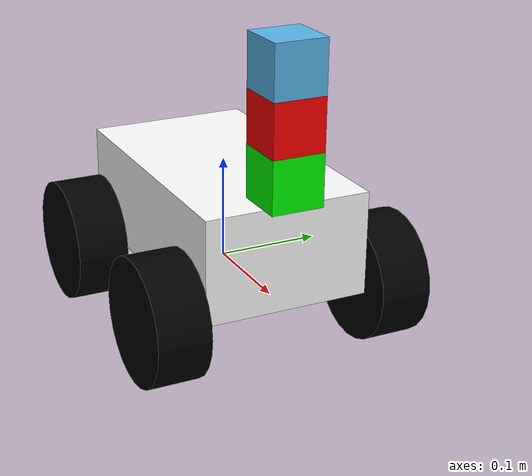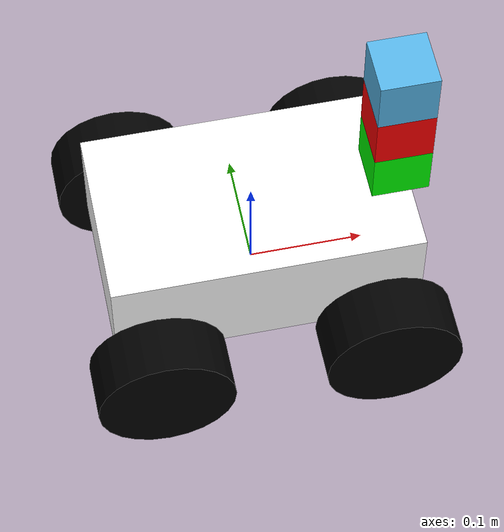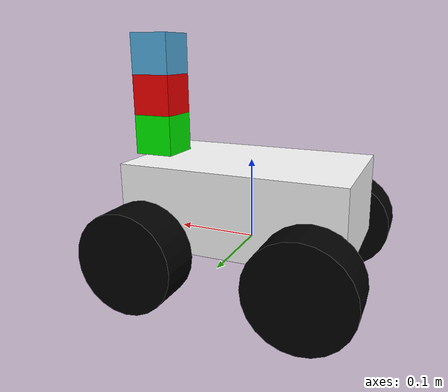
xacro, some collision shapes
<?xml version="1.0"?>

<robot name="robot" xmlns:xacro="http://www.ros.org/wiki/xacro">

	<xacro:property name="length_wheel" value="0.05" />
	<xacro:property name="radius_wheel" value="0.06" />
	<xacro:property name="camera_link" value="0.05" />
        <xacro:property name="PI" value="3.1415926"/>
	<xacro:macro name="default_inertial" params="mass">
               <inertial>
                       <mass value="${mass}" />
                       <inertia ixx="0.1" ixy="0.0"
                                ixz="0.0"
                                iyy="0.1" iyz="0.0"
                                izz="0.1" />
               </inertial>
	</xacro:macro>
    <link name="dummy">
    </link>
	<link name="base_footprint">
   		<visual>
			<geometry>
      				<box size="0.001 0.001 0.001"/>
     			</geometry>
			<origin rpy="0 0 0" xyz="0 0 0"/>
   		</visual>
		<xacro:default_inertial mass="0.0001"/>
 	</link>
   <joint name="dummy_joint" type="fixed">
     <parent link="dummy"/>
     <child link="base_footprint"/>
   </joint>

	<gazebo reference="base_footprint">
		<material>Gazebo/Green</material>
		<turnGravityOff>false</turnGravityOff>
	</gazebo>

	<joint name="base_footprint_joint" type="fixed">
		<origin xyz="0 0 0" />
		<parent link="base_footprint" />
		<child link="base_link" />
	</joint>

	<link name="base_link">
   		<visual>
			<geometry>
      				<box size="0.16 .27 .1"/>
     			</geometry>
			<origin rpy="0 0 ${PI/2}" xyz="0 0 0.05"/>
			<material name="white">　　　
				<color rgba="1 1 1 1"/>
			</material>
   		</visual>
		<collision>
			<geometry>
       				<box size="0.2 .3 0.1"/>
			</geometry>
		</collision>
                <xacro:default_inertial mass="8.2"/>
 	</link>

 	<link name="wheel_1">
   		<visual>
     			<geometry>
       				<cylinder length="${length_wheel}" radius="${radius_wheel}"/>
     			</geometry>
			<origin rpy="0 0 0" xyz="0 0 0"/>
   			<material name="black">
				<color rgba="0 0 0 1"/>
			</material>
		</visual>
		<collision>
			<geometry>
       				<cylinder length="${length_wheel}" radius="${radius_wheel}"/>
			</geometry>
		</collision>
		  <mu1>0.5</mu1>
		    <mu2>0.5</mu2>
		<xacro:default_inertial mass="0.5"/>
 	</link>

 	<link name="wheel_2">
   		<visual>
     			<geometry>
       				<cylinder length="${length_wheel}" radius="${radius_wheel}"/>
     			</geometry>
			<origin rpy="0 0 0" xyz="0 0 0"/>
   			<material name="black"/>
   		</visual>
		<collision>
			<geometry>
       				<cylinder length="${length_wheel}" radius="${radius_wheel}"/>
			</geometry>
		</collision>
		   <mu1>0.5</mu1>
		    <mu2>0.5</mu2>
		<xacro:default_inertial mass="0.5"/>

 	</link>

 	<link name="wheel_3">
   		<visual>
     			<geometry>
       				<cylinder length="${length_wheel}" radius="${radius_wheel}"/>
     			</geometry>

			<origin rpy="0 0 0" xyz="0 0 0"/>
   			<material name="black"/>
   		</visual>
		<collision>
			<geometry>
       				<cylinder length="${length_wheel}" radius="${radius_wheel}"/>
			</geometry>
		</collision>
		 <mu1>0.5</mu1>
		    <mu2>0.5</mu2>
		<xacro:default_inertial mass="0.5"/>
 	</link>

 	<link name="wheel_4">
   		<visual>
     			<geometry>
       				<cylinder length="${length_wheel}" radius="${radius_wheel}"/>
     			</geometry>
			<origin rpy="0 0 0" xyz="0 0 0" />
   			<material name="black"/>
   		</visual>
		<collision>
			<geometry>
       				<cylinder length="${length_wheel}" radius="${radius_wheel}"/>
			</geometry>
		</collision>
		   <mu1>0.5</mu1>
		    <mu2>0.5</mu2>
		<xacro:default_inertial mass="0.5"/>

 	</link>

 <joint name="base_to_wheel1" type="continuous">
   <parent link="base_link"/>
   <child link="wheel_1"/>
   <origin rpy="${-PI/2} 0 0" xyz="0.1 0.11 0"/>
   <axis xyz="0 0 1" />
 </joint>

 <joint name="base_to_wheel2" type="continuous">
   <axis xyz="0 0 1" />
   <anchor xyz="0 0 0" />
   <limit effort="100" velocity="100" />
   <parent link="base_link"/>
   <child link="wheel_2"/>
   <origin rpy="${-PI/2} 0 0" xyz="-0.1 0.11 0"/>
</joint>

 <joint name="base_to_wheel3" type="continuous">
   <parent link="base_link"/>
   <axis xyz="0 0 1" />
   <child link="wheel_3"/>
   <origin rpy="${-PI/2} 0 0" xyz="0.1 -0.11 0"/>
 </joint>

 <joint name="base_to_wheel4" type="continuous">
   <parent link="base_link"/>
   <axis xyz="0 0 1" />
   <child link="wheel_4"/>
   <origin rpy="${-PI/2} 0 0" xyz="-0.1 -0.11 0"/>
 </joint>

 <!-- IMU joint -->
  <joint name="imu_joint" type="fixed">
    <axis xyz="0 1 0" />
    <origin xyz="0.125 0 0.125" rpy="0 0 0"/>
    <parent link="base_link"/>
    <child link="imu_link"/>
  </joint>

  <!-- IMU -->
  <link name="imu_link">
    <collision>
      <origin xyz="0 0 0" rpy="0 0 0"/>
      <geometry>
  <box size="0.05 0.05 0.05"/>
      </geometry>
    </collision>

    <visual>
      <origin xyz="0 0 0" rpy="0 0 0"/>
      <geometry>
  <box size="0.05 0.05 0.05"/>
      </geometry>
      <material name="green">
  <color rgba="0 1 0 1"/>
      </material>
    </visual>

    <inertial>
      <mass value="1e-2" />
      <origin xyz="0 0 0" rpy="0 0 0"/>
      <inertia ixx="1e-6" ixy="0" ixz="0" iyy="1e-6" iyz="0" izz="1e-6" />
    </inertial>
  </link>

     <!-- IMU -->

  <!-- Camera joint -->
  <joint name="camera_joint" type="fixed">
    <axis xyz="0 1 0" />
    <origin xyz="0.125 0 0.175" rpy="0 0 0"/>
    <parent link="base_link"/>
    <child link="camera_link"/>
  </joint>

  <!-- Camera -->
  <link name="camera_link">
    <collision>
      <origin xyz="0 0 0" rpy="0 0 0"/>
      <geometry>
	<box size="0.05 0.05 0.05"/>
      </geometry>
    </collision>

    <visual>
      <origin xyz="0 0 0" rpy="0 0 0"/>
      <geometry>
	<box size="0.05 0.05 0.05"/>
      </geometry>
      <material name="red">
	<color rgba="1 0 0 1"/>
      </material>
    </visual>

    <inertial>
      <mass value="1e-2" />
      <origin xyz="0 0 0" rpy="0 0 0"/>
      <inertia ixx="1e-6" ixy="0" ixz="0" iyy="1e-6" iyz="0" izz="1e-6" />
    </inertial>
  </link>

     <!-- camera -->

  <!-- Hokuyo joint -->
  <joint name="hokuyo_joint" type="fixed">
    <origin xyz="0.125 0.0 0.225" rpy="0 0 0"/>
    <parent link="base_link"/>
    <axis xyz="0 1 0" />
    <child link="laser_frame"/>
  </joint>

  <!-- Hokuyo Laser -->
  <link name="laser_frame">
    <collision>
      <origin xyz="0 0 0" rpy="0 0 0"/>
      <geometry>
	<box size="0.05 0.05 0.05"/>
      </geometry>
    </collision>

    <visual>
      <origin xyz="0 0 0" rpy="0 0 0"/>
      <geometry>
        <mesh filename="package://gazebo_pkg/meshes/hokuyo.dae"/>
      </geometry>
    </visual>

    <inertial>
      <mass value="1e-2" />
      <origin xyz="0 0 0" rpy="0 0 0"/>
      <inertia ixx="1e-6" ixy="0" ixz="0" iyy="1e-6" iyz="0" izz="1e-6" />
    </inertial>
  </link>

   <!-- hokuyo -->

<!-- gazebo插件设置相关 -->

   <gazebo reference="base_link">
    <material>Gazebo/Turquoise</material>
  </gazebo>

 <gazebo reference="wheel_1">
        <material>Gazebo/XYZPoints</material>
 </gazebo>

 <gazebo reference="wheel_2">
        <material>Gazebo/XYZPoints</material>
 </gazebo>

 <gazebo reference="wheel_3">
        <material>Gazebo/XYZPoints</material>
 </gazebo>

 <gazebo reference="wheel_4">
        <material>Gazebo/XYZPoints</material>
 </gazebo>

  <!-- ros_control plugin -->

  <!-- camera_link -->
  <gazebo reference="camera_link">
    <material>Gazebo/Red</material>
  </gazebo>

  <!-- hokuyo -->
  <gazebo reference="laser_frame">
    <sensor type="ray" name="head_hokuyo_sensor">
    <!-- GPU -->
      <pose>0 0 0 0 0 0</pose>
      <visualize>false</visualize>
      <update_rate>15</update_rate>
      <ray>
        <scan>
          <horizontal>
            <samples>720</samples>
            <resolution>1</resolution>
            <min_angle>-3.1415926</min_angle>
            <max_angle>3.1415926</max_angle>
          </horizontal>
        </scan>
        <range>
          <min>0.05</min>
          <max>30.0</max>
          <resolution>0.01</resolution>
        </range>
        <noise>
          <type>gaussian</type>
          <mean>0.0</mean>
          <stddev>0.01</stddev>
        </noise>
      </ray>
      <!-- GPU版本 -->
      <plugin name="gazebo_ros_head_hokuyo_controller" filename="libgazebo_ros_laser.so">
        <topicName>/scan</topicName>
        <frameName>laser_frame</frameName>
      </plugin>
    </sensor>
  </gazebo>

  <!-- camera -->
  <gazebo reference="camera_link">
    <sensor type="camera" name="camera1">
      <update_rate>30.0</update_rate>
      <camera name="head">
        <horizontal_fov>1.3962634</horizontal_fov>
        <image>
          <width>1920</width>
          <height>1080</height>
          <format>R8G8B8</format>
        </image>
        <clip>
          <near>0.02</near>
          <far>300</far>
        </clip>
        <noise>
          <type>gaussian</type>
          <!-- Noise is sampled independently per pixel on each frame.
               That pixel's noise value is added to each of its color
               channels, which at that point lie in the range [0,1]. -->
          <mean>0.0</mean>
          <stddev>0.007</stddev>
        </noise>
      </camera>
      <plugin name="camera_controller" filename="libgazebo_ros_camera.so">
        <alwaysOn>true</alwaysOn>
        <updateRate>0.0</updateRate>
        <cameraName>/</cameraName>
        <imageTopicName>cam</imageTopicName>
        <cameraInfoTopicName>camera_info</cameraInfoTopicName>
        <frameName>camera_link</frameName>
        <hackBaseline>0.07</hackBaseline>
        <distortionK1>0.0</distortionK1>
        <distortionK2>0.0</distortionK2>
        <distortionK3>0.0</distortionK3>
        <distortionT1>0.0</distortionT1>
        <distortionT2>0.0</distortionT2>
      </plugin>
    </sensor>
  </gazebo>

  <!-- camera kinect -->
  <gazebo reference="camera_link">
      <sensor type="depth" name="camera2">
        <always_on>true</always_on>
        <update_rate>30.0</update_rate>
        <camera>
          <horizontal_fov>1.3962634</horizontal_fov>
          <image>
            <format>R8G8B8</format>
            <width>1920</width>
            <height>1080</height>
          </image>
          <clip>
            <near>0.05</near>
            <far>8.0</far>
          </clip>
        </camera>
        <plugin name="kinect_camera_controller" filename="libgazebo_ros_openni_kinect.so">
          <cameraName>camera2</cameraName>
          <alwaysOn>true</alwaysOn>
          <updateRate>10</updateRate>
          <imageTopicName>rgb/image_raw</imageTopicName>
          <depthImageTopicName>depth/image_raw</depthImageTopicName>
          <pointCloudTopicName>depth/points</pointCloudTopicName>
          <cameraInfoTopicName>rgb/camera_info</cameraInfoTopicName>
          <depthImageCameraInfoTopicName>depth/camera_info</depthImageCameraInfoTopicName>
          <frameName>support_depth</frameName>
          <baseline>0.1</baseline>
          <distortion_k1>0.0</distortion_k1>
          <distortion_k2>0.0</distortion_k2>
          <distortion_k3>0.0</distortion_k3>
          <distortion_t1>0.0</distortion_t1>
          <distortion_t2>0.0</distortion_t2>
          <pointCloudCutoff>0.4</pointCloudCutoff>
        </plugin>
      </sensor>
    </gazebo>

  <!-- Drive controller -->
<gazebo>
  <plugin name="mecanum_controller" filename="libgazebo_ros_planar_move.so">
    <alwaysOn>true</alwaysOn>
    <updateRate>100.0</updateRate>
    <robotNamespace>/</robotNamespace>
    <leftFrontJoint>base_to_wheel1</leftFrontJoint>
    <rightFrontJoint>base_to_wheel3</rightFrontJoint>
    <leftRearJoint>base_to_wheel2</leftRearJoint>
    <rightRearJoint>base_to_wheel4</rightRearJoint>
    <odometryRate>100.0</odometryRate>
    <wheelSeparation>0.26</wheelSeparation>
    <wheelDiameter>0.12</wheelDiameter>
    <torque>2</torque>
    <commandTopic>cmd_vel</commandTopic>
    <odometryTopic>odom</odometryTopic>
    <odometryFrame>odom</odometryFrame>
    <robotBaseFrame>dummy</robotBaseFrame>
    <broadcastTF>1</broadcastTF>
  </plugin>
</gazebo>

<!-- imu控制 -->

   <gazebo reference="imu_link">
        <material>Gazebo/Orange</material>
        <gravity>true</gravity>
        <sensor name="imu_sensor" type="imu">
            <always_on>true</always_on>
            <update_rate>100</update_rate>
            <visualize>true</visualize>
            <topic>__default_topic__</topic>
            <plugin filename="libgazebo_ros_imu_sensor.so" name="imu_plugin">
                <topicName>imu</topicName>
                <bodyName>imu_link</bodyName>
                <updateRateHZ>100.0</updateRateHZ>
                <gaussianNoise>0.0</gaussianNoise>
                <xyzOffset>0 0 0</xyzOffset>
                <rpyOffset>0 0 0</rpyOffset>
                <frameName>imu_link</frameName>
            </plugin>
            <pose>0 0 0 0 0 0</pose>
        </sensor>
    </gazebo>

<!-- gazebo插件设置相关结束 -->

</robot>
